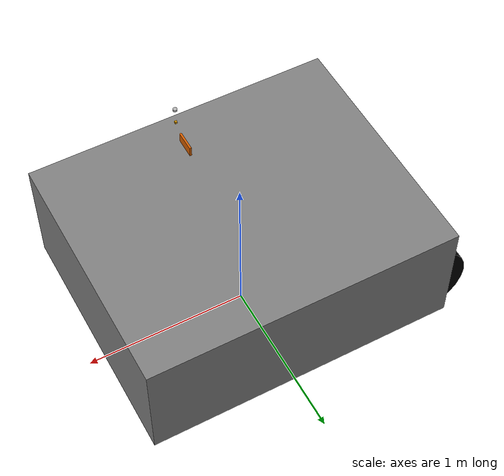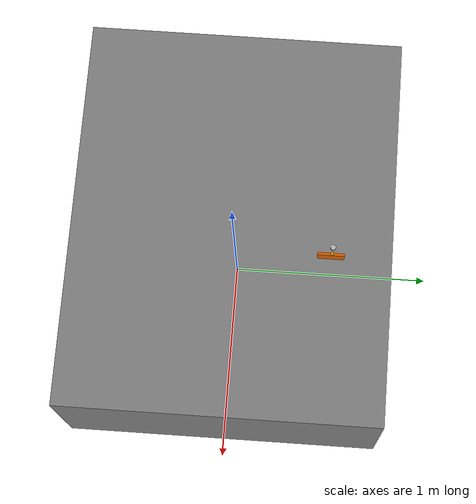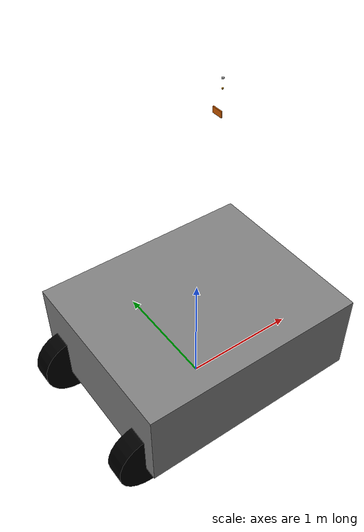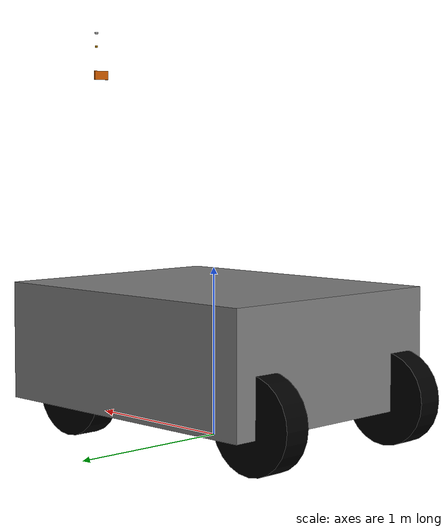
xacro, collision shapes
<?xml version="1.0"?>
<robot name="simple_rover" xmlns:xacro="http://www.ros.org/wiki/xacro">

    <xacro:include filename="common_properties.xacro" />
    <xacro:include filename="mobile_base.xacro" />
    <xacro:include filename="mobile_base_gazebo.xacro" />
    <xacro:include filename="camera.xacro" />
    <xacro:include filename="gps.xacro" />
    <xacro:include filename="imu.xacro" />
    <xacro:include filename="depth_camera.xacro"/>

</robot>

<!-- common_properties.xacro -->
<robot name="simple_rover" xmlns:xacro="http://www.ros.org/wiki/xacro">
  <material name="gray">
    <color rgba="0.5 0.5 0.5 1"/>
  </material>
  <material name="black">
    <color rgba="0 0 0 1"/>
  </material>
  <xacro:macro name="box_inertia" params="m x y z o_xyz o_rpy">
    <inertial>
      <mass value="${m}"/>
      <origin xyz="${o_xyz}" rpy="${o_rpy}"/>
      <inertia ixx="${(m/12) * (y*y + z*z)}" ixy="0" ixz="0" iyy="${(m/12) * (x*x + z*z)}" iyz="0" izz="${(m/12) * (y*y + x*x)}"/>
    </inertial>
  </xacro:macro>
  <xacro:macro name="cylinder_inertia" params="m r h o_xyz o_rpy">
    <inertial>
      <mass value="${m}"/>
      <origin xyz="${o_xyz}" rpy="${o_rpy}"/>
      <inertia ixx="${(m/12) * (3*r*r + h*h)}" ixy="0" ixz="0" iyy="${(m/12) * (3*r*r + h*h)}" iyz="0" izz="${(m/2) * r*r}"/>
    </inertial>
  </xacro:macro>
</robot>

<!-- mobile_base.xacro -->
<robot name="simple_rover" xmlns:xacro="http://www.ros.org/wiki/xacro">
  <xacro:property name="base_length" value="1.88"/>
  <xacro:property name="base_height" value="0.7"/>
  <xacro:property name="base_width" value="1.52"/>
  <xacro:property name="wheel_radius" value="0.272"/>
  <xacro:property name="wheel_width" value="0.162"/>
  <link name="base_link">
    <visual>
      <geometry>
         <mesh filename="package://my_robot_description/meshes/base_robot_amiga.dae" scale="1 1 1"/>
      </geometry>
      <origin rpy="0 0 ${pi}" xyz="0 0 0"/>
      <material name="gray"/>
    </visual>
    <xacro:box_inertia m="100" x="${base_length}" y="${base_width}" z="${base_height}" o_xyz="0 0 ${base_height/2}" o_rpy="0 0 0"/>
    <collision>
      <origin rpy="0 0 0" xyz="0 0 0.55"/>
      <geometry>
        <box size="${base_length} ${base_width} ${base_height}"/>
      </geometry>
    </collision>
  </link>
  <link name="front_left_wheel">
    <visual>
      <geometry>
        <mesh filename="package://my_robot_description/meshes/wheel.dae" scale="1 1 1"/>
      </geometry>
      <origin rpy="0 0 ${pi}" xyz="0 0 0"/>
      <material name="black"/>
    </visual>
    <xacro:cylinder_inertia m="10" r="${wheel_radius}" h="${wheel_width}" o_xyz="0 0 0" o_rpy="${pi/2} 0 0"/>
    <collision>
      <geometry>
        <cylinder length="${wheel_width}" radius="${wheel_radius}"/>
      </geometry>
      <origin rpy="${pi / 2} 0 0" xyz="0 0 0"/>
    </collision>
  </link>
  <joint name="front_left_joint" type="continuous">
    <parent link="base_link"/>
    <child link="front_left_wheel"/>
    <origin rpy="0 0 0" xyz="0.60468 -0.57165 0.27"/>
    <axis xyz="0 1 0"/>
  </joint>
  <link name="front_right_wheel">
    <visual>
      <geometry>
        <mesh filename="package://my_robot_description/meshes/wheel.dae" scale="1 1 1"/>
      </geometry>
      <origin rpy="0 0 0" xyz="0 0 0"/>
      <material name="black"/>
    </visual>
    <xacro:cylinder_inertia m="10" r="${wheel_radius}" h="${wheel_width}" o_xyz="0 0 0" o_rpy="${pi/2} 0 0"/>
    <collision>
      <geometry>
        <cylinder length="${wheel_width}" radius="${wheel_radius}"/>
      </geometry>
      <origin rpy="${pi / 2} 0 0" xyz="0 0 0"/>
    </collision>
  </link>
  <joint name="front_right_joint" type="continuous">
    <parent link="base_link"/>
    <child link="front_right_wheel"/>
    <origin rpy="0 0 0" xyz="0.60468 0.5403 0.27"/>
    <axis xyz="0 1 0"/>
  </joint>
  <link name="rear_left_wheel">
    <visual>
      <geometry>
        <mesh filename="package://my_robot_description/meshes/wheel.dae" scale="1 1 1"/>
      </geometry>
      <origin rpy="0 0 ${pi}" xyz="0 0 0"/>
      <material name="black"/>
    </visual>
    <xacro:cylinder_inertia m="10" r="${wheel_radius}" h="${wheel_width}" o_xyz="0 0 0" o_rpy="${pi/2} 0 0"/>
    <collision>
      <geometry>
        <cylinder length="${wheel_width}" radius="${wheel_radius}"/>
      </geometry>
      <origin rpy="${pi / 2} 0 0" xyz="0 0 0"/>
    </collision>
  </link>
  <joint name="rear_left_joint" type="continuous">
    <parent link="base_link"/>
    <child link="rear_left_wheel"/>
    <origin rpy="0 0 0" xyz="-0.89016 -0.57165 0.27"/>
    <axis xyz="0 1 0"/>
  </joint>
  <link name="rear_right_wheel">
    <visual>
      <geometry>
        <mesh filename="package://my_robot_description/meshes/wheel.dae" scale="1 1 1"/>
      </geometry>
      <origin rpy="0 0 0" xyz="0 0 0"/>
      <material name="black"/>
    </visual>
    <xacro:cylinder_inertia m="10" r="${wheel_radius}" h="${wheel_width}" o_xyz="0 0 0" o_rpy="${pi/2} 0 0"/>
    <collision>
      <geometry>
        <cylinder length="${wheel_width}" radius="${wheel_radius}"/>
      </geometry>
      <origin rpy="${pi / 2} 0 0" xyz="0 0 0"/>
    </collision>
  </link>
  <joint name="rear_right_joint" type="continuous">
    <parent link="base_link"/>
    <child link="rear_right_wheel"/>
    <origin rpy="0 0 0" xyz="-0.89016 0.5403 0.27"/>
    <axis xyz="0 1 0"/>
  </joint>
</robot>

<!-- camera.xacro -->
<robot xmlns:xacro="http://www.ros.org/wiki/xacro">

    <xacro:property name="camera_length" value="0.01" />
    <xacro:property name="camera_width" value="0.1" />
    <xacro:property name="camera_height" value="0.05" />

    <link name="camera_link">
        <visual>
            <geometry>
                <box size="${camera_length} ${camera_width} ${camera_height}" />
            </geometry>
        </visual>
        <collision>
            <geometry>
                <box size="${camera_length} ${camera_width} ${camera_height}" />
            </geometry>
        </collision>
        <xacro:box_inertia m="0.1" x="${camera_length}" y="${camera_width}" z="${camera_height}"
                           o_xyz="0 0 0" o_rpy="0 0 0" />
    </link>

    <joint name="base_camera_joint" type="fixed">
        <parent link="base_link" />
        <child link="camera_link" />
        <origin xyz="0.50 0.44 2.13" rpy="0 0 3.14" />
    </joint>

    <link name="camera_link_optical" />

    <joint name="camera_optical_joint" type="fixed">
        <origin xyz="0 0 0" rpy="${-pi/2} 0 ${-pi/2}"/>
        <parent link="camera_link"/>
        <child link="camera_link_optical"/>
    </joint>
    <gazebo reference="camera_link">
        <sensor name="camera" type="camera">
            <camera>
                <horizontal_fov>1.3962634</horizontal_fov>
                <image>
                    <width>640</width>
                    <height>480</height>
                    <format>R8G8B8</format>
                </image>
                <clip>
                    <near>0.1</near>
                    <far>15</far>
                </clip>
                <noise>
                    <type>gaussian</type>
                    <mean>0.0</mean>
                    <stddev>0.007</stddev>
                </noise>
                <optical_frame_id>camera_link_optical</optical_frame_id>
                <camera_info_topic>camera/camera_info</camera_info_topic>
            </camera>
            <always_on>1</always_on>
            <update_rate>20</update_rate>
            <visualize>true</visualize>
            <topic>camera/image_raw</topic>
        </sensor>
    </gazebo>
</robot>

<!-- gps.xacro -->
<robot xmlns:xacro="http://www.ros.org/wiki/xacro">

    <xacro:property name="gps_radius" value="0.01" />
    <xacro:property name="gps_width" value="0.01" />

    <link name="gps_link">
        <visual>
            <geometry>
                <cylinder radius="${gps_radius}" length="${gps_width}" />
            </geometry>
        </visual>
        <collision>
            <geometry>
                <cylinder radius="${gps_radius}" length="${gps_width}" />
            </geometry>
        </collision>
        <xacro:cylinder_inertia m="0.1" r="${gps_radius}" h="${gps_width}"
                           o_xyz="0 0 0" o_rpy="0 0 0" />
    </link>

    <joint name="base_gps_joint" type="fixed">
        <parent link="base_link" />
        <child link="gps_link" />
        <origin xyz="0.54 0.44 2.38" rpy="0 0 0" />
    </joint>

    <gazebo reference="gps_link">
        <sensor name="navsat" type="navsat">
            <always_on>true</always_on>
            <update_rate>5.0</update_rate>
            <topic>/gps/fix</topic>
            <navsat>
                <position_sensing>
                        <horizontal>
                        <noise type="gaussian">
                            <mean>0.0</mean>
                            <stddev>0.0</stddev>
                        </noise>
                        </horizontal>
                        <vertical>
                        <noise type="gaussian">
                            <mean>0.0</mean>
                            <stddev>0.0</stddev>
                        </noise>
                        </vertical>
                    </position_sensing>
            </navsat>
        </sensor>
    </gazebo>
</robot>

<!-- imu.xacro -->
<robot xmlns:xacro="http://www.ros.org/wiki/xacro">
    <link name="imu_link">
        <visual>
            <geometry>
                <box size="0.01 0.01 0.01" />
            </geometry>
        </visual>
        <collision>
            <geometry>
                <box size="0.01 0.01 0.01" />
            </geometry>
        </collision>
        <inertial>
            <mass value="0.1" />
            <inertia ixx="1.67e-06" ixy="0.0" ixz="0.0"
                     iyy="1.67e-06" iyz="0.0" izz="1.67e-06" />
        </inertial>
    </link>

    <joint name="imu_joint" type="fixed">
        <parent link="base_link"/> <child link="imu_link"/>
        <origin xyz="0.54 0.44 2.30" rpy="0 0 0"/>
    </joint>

    <gazebo reference="imu_link">
        <sensor name="imu_sensor" type="imu">
            <always_on>true</always_on>
            <update_rate>100</update_rate>
            <visualize>true</visualize>
            <topic>/imu</topic>
            <gz_frame_id>imu_link</gz_frame_id>
            <imu>
                <angular_velocity>
                    <x><noise type="gaussian"><mean>0.0</mean><stddev>2e-4</stddev><bias_mean>0.0000075</bias_mean><bias_stddev>0.0000008</bias_stddev></noise></x>
                    <y><noise type="gaussian"><mean>0.0</mean><stddev>2e-4</stddev><bias_mean>0.0000075</bias_mean><bias_stddev>0.0000008</bias_stddev></noise></y>
                    <z><noise type="gaussian"><mean>0.0</mean><stddev>2e-4</stddev><bias_mean>0.0000075</bias_mean><bias_stddev>0.0000008</bias_stddev></noise></z>
                </angular_velocity>
                <linear_acceleration>
                    <x><noise type="gaussian"><mean>0.0</mean><stddev>1.7e-2</stddev><bias_mean>0.1</bias_mean><bias_stddev>0.001</bias_stddev></noise></x>
                    <y><noise type="gaussian"><mean>0.0</mean><stddev>1.7e-2</stddev><bias_mean>0.1</bias_mean><bias_stddev>0.001</bias_stddev></noise></y>
                    <z><noise type="gaussian"><mean>0.0</mean><stddev>1.7e-2</stddev><bias_mean>0.1</bias_mean><bias_stddev>0.001</bias_stddev></noise></z>
                </linear_acceleration>
            </imu>
        </sensor>
    </gazebo>
</robot>

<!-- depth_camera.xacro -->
<robot xmlns:xacro="http://www.ros.org/wiki/xacro">

    <xacro:property name="camera_length" value="0.01" />
    <xacro:property name="camera_width" value="0.1" />
    <xacro:property name="camera_height" value="0.05" />

    <link name="depth_camera_link">
        <visual>
            <geometry>
                <box size="${camera_length} ${camera_width} ${camera_height}" />
            </geometry>
        </visual>
    </link>

    <joint name="base_depth_camera_joint" type="fixed">
        <parent link="base_link" />
        <child link="depth_camera_link" />
        <origin xyz="0.65 0.44 2.13" rpy="0 0.6 0" />
    </joint>

    <link name="depth_camera_link_optical" />

    <joint name="depth_camera_optical_joint" type="fixed">
        <origin xyz="0 0 0" rpy="0 0 0  "/>
        <parent link="depth_camera_link"/>
        <child link="depth_camera_link_optical"/>
    </joint>

    <gazebo reference="depth_camera_link">
        <sensor name="depth_camera" type="rgbd_camera">
        <always_on>true</always_on>
        <visualize>true</visualize>
        <update_rate>5.0</update_rate>
        <topic>depth_camera</topic>
        <gz_frame_id>depth_camera_link</gz_frame_id>
        <camera>
          <horizontal_fov>1.047198</horizontal_fov>
          <image>
            <width>640</width>
            <height>480</height>
          </image>
          <clip>
            <near>0.05</near>
            <far>3</far>
          </clip>
        </camera>
        <baseline>0.2</baseline>
        <pointCloudCutoff>0.5</pointCloudCutoff>
        <pointCloudCutoffMax>3.0</pointCloudCutoffMax>
        <distortionK1>0</distortionK1>
        <distortionK2>0</distortionK2>
        <distortionK3>0</distortionK3>
        <distortionT1>0</distortionT1>
        <distortionT2>0</distortionT2>
        <CxPrime>0</CxPrime>
        <Cx>0</Cx>
        <Cy>0</Cy>
        <focalLength>0</focalLength>
        <hackBaseline>0</hackBaseline>
      </sensor>
    </gazebo>
</robot>
